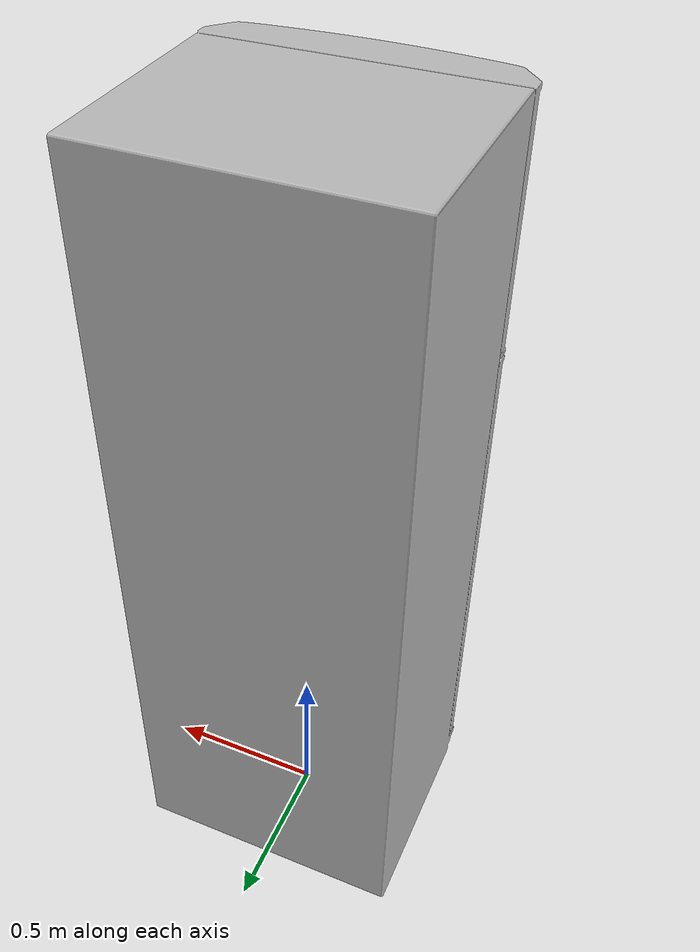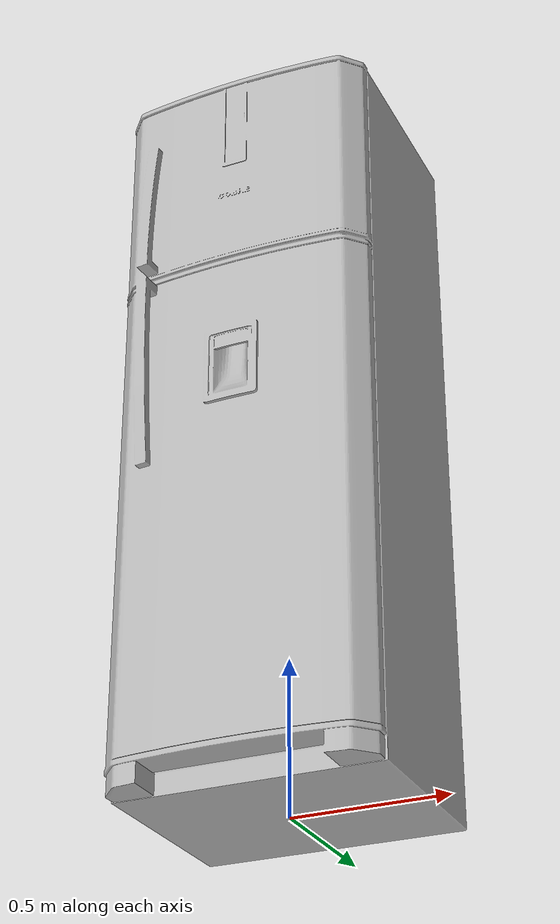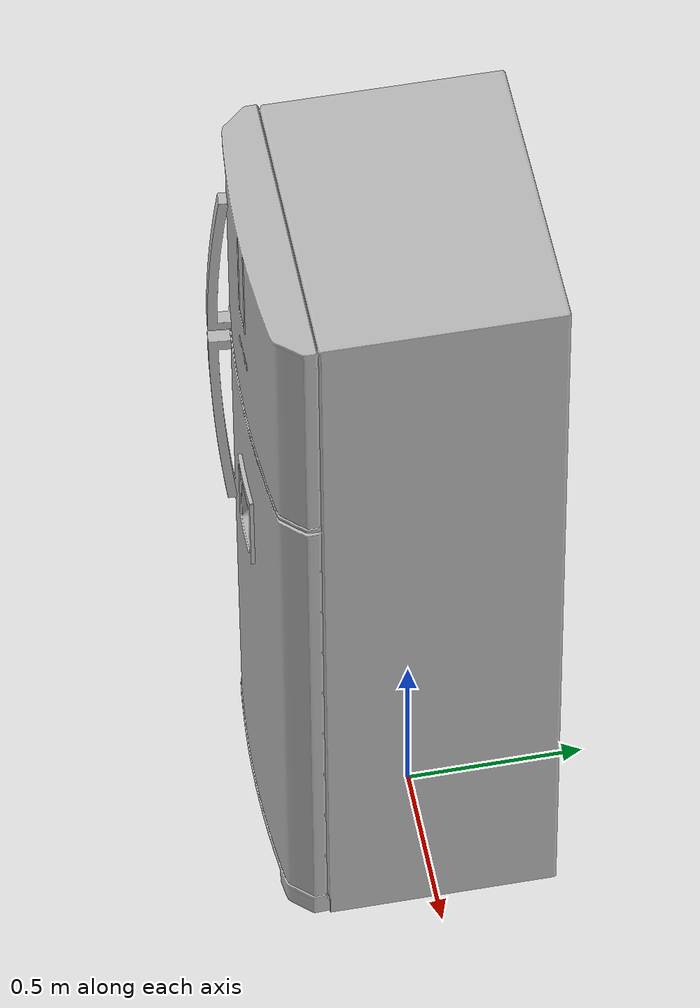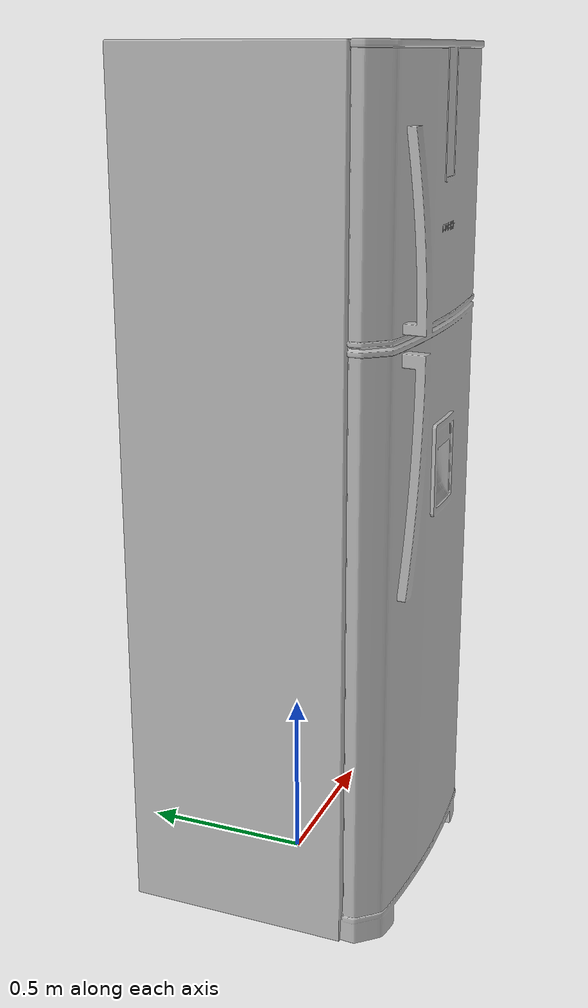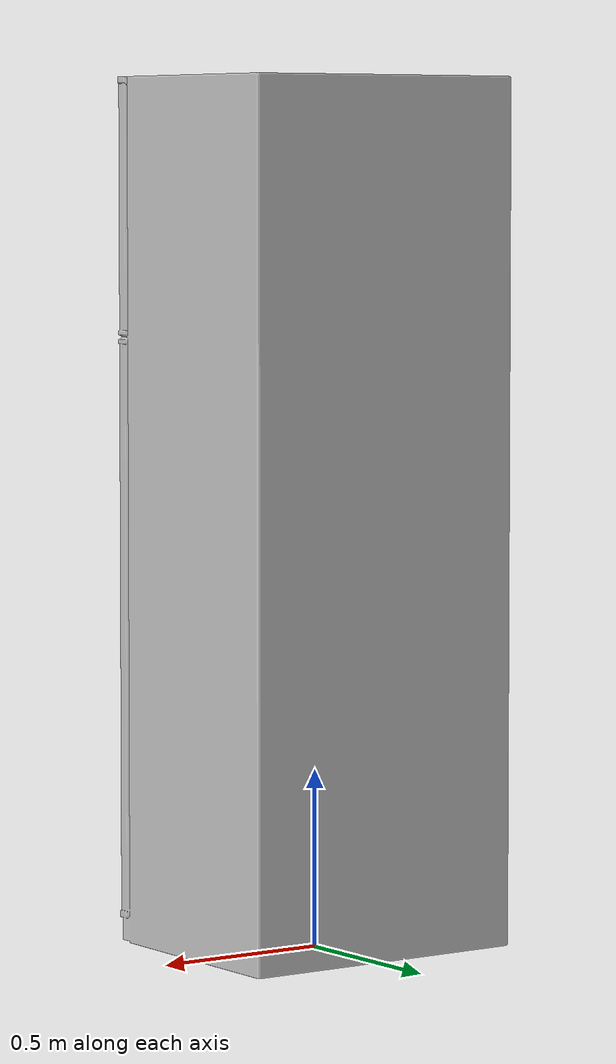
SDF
<?xml version="1.0" ?>
<sdf version="1.7">
  <model name="fridge">
    <static>true</static>
    <link name="fridgelink">
      <collision name="collision">
        <geometry>
          <mesh>
            <uri>model://fridge/meshes/fridge.obj</uri>
            <scale> 0.012 0.012 0.012 </scale>
          </mesh>
        </geometry>
      </collision>
      <visual name="visual">
        <geometry>
          <mesh>
            <uri>model://fridge/meshes/fridge.obj</uri>
            <scale> 0.012 0.012 0.012 </scale>
          </mesh>
        </geometry>
      </visual>
    </link>
  </model>
</sdf>
